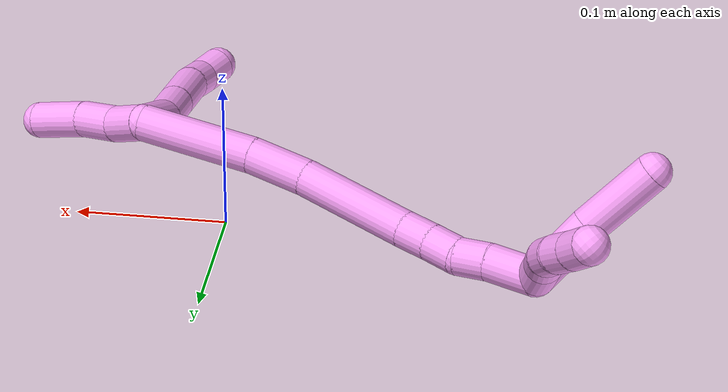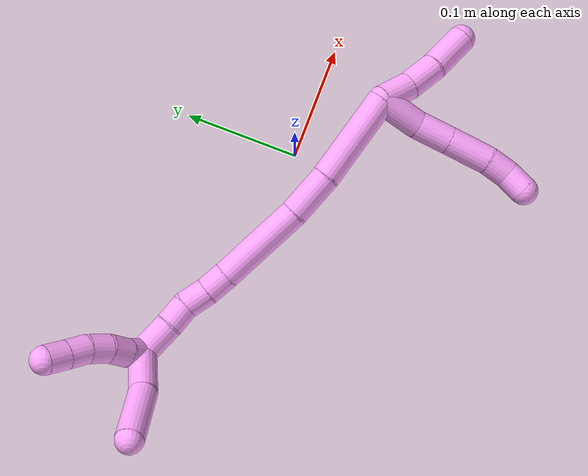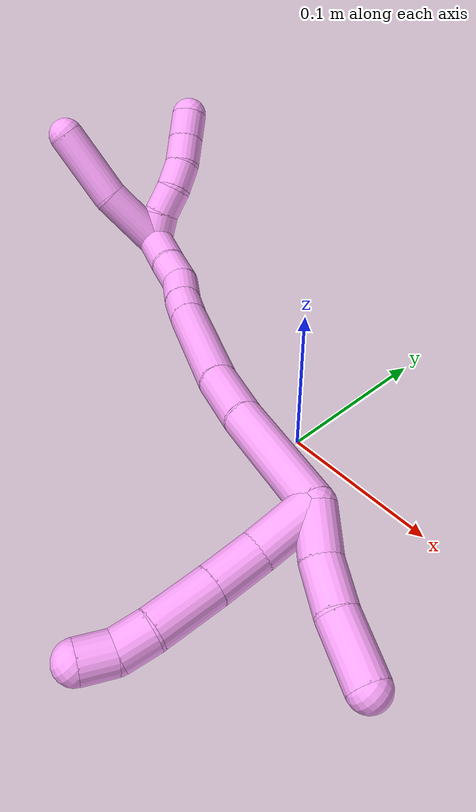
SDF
<sdf version="1.7">
 <world name="default">
  <model name="4">
   <static>0</static>
   <link name="4">
    <collision name="collision-cylinder-e_1_2_8">
     <pose>-0.007782 -0.017626 0.002929 1.4061 -0.410736 -0.349482</pose>
     <geometry><cylinder><radius>0.0125</radius><length>0.038977</length></cylinder></geometry>
     <surface>
      <friction><ode><mu>1.16</mu><mu2>1.16</mu2><slip1>0</slip1><slip2>0</slip2></ode></friction>
      <contact><ode><kp>1e+06</kp><kd>1</kd><max_vel>0</max_vel><min_depth>0.001</min_depth></ode></contact>
     </surface>
    </collision>
    <visual name="visual-cylinder-e_1_2_8">
     <pose>-0.007782 -0.017626 0.002929 1.4061 -0.410736 -0.349482</pose>
     <geometry><cylinder><radius>0.0125</radius><length>0.038977</length></cylinder></geometry>
     <material><ambient>1 0.65098 0.996078 1</ambient></material>
    </visual>
    <collision name="collision-cylinder-e_2_8_9">
     <pose>-0.018221 -0.04992 0.009893 1.30241 -0.172968 -0.131958</pose>
     <geometry><cylinder><radius>0.0125</radius><length>0.030886</length></cylinder></geometry>
     <surface>
      <friction><ode><mu>1.16</mu><mu2>1.16</mu2><slip1>0</slip1><slip2>0</slip2></ode></friction>
      <contact><ode><kp>1e+06</kp><kd>1</kd><max_vel>0</max_vel><min_depth>0.001</min_depth></ode></contact>
     </surface>
    </collision>
    <visual name="visual-cylinder-e_2_8_9">
     <pose>-0.018221 -0.04992 0.009893 1.30241 -0.172968 -0.131958</pose>
     <geometry><cylinder><radius>0.0125</radius><length>0.030886</length></cylinder></geometry>
     <material><ambient>1 0.65098 0.996078 1</ambient></material>
    </visual>
    <collision name="collision-cylinder-e_3_9_10">
     <pose>-0.024102 -0.082708 0.019457 1.27458 -0.168542 -0.124912</pose>
     <geometry><cylinder><radius>0.0125</radius><length>0.038435</length></cylinder></geometry>
     <surface>
      <friction><ode><mu>1.16</mu><mu2>1.16</mu2><slip1>0</slip1><slip2>0</slip2></ode></friction>
      <contact><ode><kp>1e+06</kp><kd>1</kd><max_vel>0</max_vel><min_depth>0.001</min_depth></ode></contact>
     </surface>
    </collision>
    <visual name="visual-cylinder-e_3_9_10">
     <pose>-0.024102 -0.082708 0.019457 1.27458 -0.168542 -0.124912</pose>
     <geometry><cylinder><radius>0.0125</radius><length>0.038435</length></cylinder></geometry>
     <material><ambient>1 0.65098 0.996078 1</ambient></material>
    </visual>
    <collision name="collision-cylinder-e_4_10_11">
     <pose>-0.030626 -0.11024 0.028287 1.23363 -0.319521 -0.227536</pose>
     <geometry><cylinder><radius>0.0125</radius><length>0.021012</length></cylinder></geometry>
     <surface>
      <friction><ode><mu>1.16</mu><mu2>1.16</mu2><slip1>0</slip1><slip2>0</slip2></ode></friction>
      <contact><ode><kp>1e+06</kp><kd>1</kd><max_vel>0</max_vel><min_depth>0.001</min_depth></ode></contact>
     </surface>
    </collision>
    <visual name="visual-cylinder-e_4_10_11">
     <pose>-0.030626 -0.11024 0.028287 1.23363 -0.319521 -0.227536</pose>
     <geometry><cylinder><radius>0.0125</radius><length>0.021012</length></cylinder></geometry>
     <material><ambient>1 0.65098 0.996078 1</ambient></material>
    </visual>
    <collision name="collision-cylinder-e_5_11_6">
     <pose>-0.036739 -0.127439 0.03779 0.898041 -0.275348 -0.133323</pose>
     <geometry><cylinder><radius>0.0125</radius><length>0.02069</length></cylinder></geometry>
     <surface>
      <friction><ode><mu>1.16</mu><mu2>1.16</mu2><slip1>0</slip1><slip2>0</slip2></ode></friction>
      <contact><ode><kp>1e+06</kp><kd>1</kd><max_vel>0</max_vel><min_depth>0.001</min_depth></ode></contact>
     </surface>
    </collision>
    <visual name="visual-cylinder-e_5_11_6">
     <pose>-0.036739 -0.127439 0.03779 0.898041 -0.275348 -0.133323</pose>
     <geometry><cylinder><radius>0.0125</radius><length>0.02069</length></cylinder></geometry>
     <material><ambient>1 0.65098 0.996078 1</ambient></material>
    </visual>
    <collision name="collision-cylinder-e_1_2_12">
     <pose>0.00298 -0.011873 -0.008974 2.21803 0.197622 0.393247</pose>
     <geometry><cylinder><radius>0.0125</radius><length>0.030356</length></cylinder></geometry>
     <surface>
      <friction><ode><mu>1.16</mu><mu2>1.16</mu2><slip1>0</slip1><slip2>0</slip2></ode></friction>
      <contact><ode><kp>1e+06</kp><kd>1</kd><max_vel>0</max_vel><min_depth>0.001</min_depth></ode></contact>
     </surface>
    </collision>
    <visual name="visual-cylinder-e_1_2_12">
     <pose>0.00298 -0.011873 -0.008974 2.21803 0.197622 0.393247</pose>
     <geometry><cylinder><radius>0.0125</radius><length>0.030356</length></cylinder></geometry>
     <material><ambient>1 0.65098 0.996078 1</ambient></material>
    </visual>
    <collision name="collision-cylinder-e_2_12_13">
     <pose>0.012364 -0.034381 -0.026509 2.24853 0.438618 0.871403</pose>
     <geometry><cylinder><radius>0.0125</radius><length>0.030161</length></cylinder></geometry>
     <surface>
      <friction><ode><mu>1.16</mu><mu2>1.16</mu2><slip1>0</slip1><slip2>0</slip2></ode></friction>
      <contact><ode><kp>1e+06</kp><kd>1</kd><max_vel>0</max_vel><min_depth>0.001</min_depth></ode></contact>
     </surface>
    </collision>
    <visual name="visual-cylinder-e_2_12_13">
     <pose>0.012364 -0.034381 -0.026509 2.24853 0.438618 0.871403</pose>
     <geometry><cylinder><radius>0.0125</radius><length>0.030161</length></cylinder></geometry>
     <material><ambient>1 0.65098 0.996078 1</ambient></material>
    </visual>
    <collision name="collision-cylinder-e_3_13_5">
     <pose>0.026585 -0.056979 -0.04869 2.4209 0.407069 1.00223</pose>
     <geometry><cylinder><radius>0.0125</radius><length>0.039483</length></cylinder></geometry>
     <surface>
      <friction><ode><mu>1.16</mu><mu2>1.16</mu2><slip1>0</slip1><slip2>0</slip2></ode></friction>
      <contact><ode><kp>1e+06</kp><kd>1</kd><max_vel>0</max_vel><min_depth>0.001</min_depth></ode></contact>
     </surface>
    </collision>
    <visual name="visual-cylinder-e_3_13_5">
     <pose>0.026585 -0.056979 -0.04869 2.4209 0.407069 1.00223</pose>
     <geometry><cylinder><radius>0.0125</radius><length>0.039483</length></cylinder></geometry>
     <material><ambient>1 0.65098 0.996078 1</ambient></material>
    </visual>
    <collision name="collision-cylinder-e_1_2_14">
     <pose>-0.028983 0.018718 0.021398 -0.718697 -0.795038 0.31288</pose>
     <geometry><cylinder><radius>0.0125</radius><length>0.081196</length></cylinder></geometry>
     <surface>
      <friction><ode><mu>1.16</mu><mu2>1.16</mu2><slip1>0</slip1><slip2>0</slip2></ode></friction>
      <contact><ode><kp>1e+06</kp><kd>1</kd><max_vel>0</max_vel><min_depth>0.001</min_depth></ode></contact>
     </surface>
    </collision>
    <visual name="visual-cylinder-e_1_2_14">
     <pose>-0.028983 0.018718 0.021398 -0.718697 -0.795038 0.31288</pose>
     <geometry><cylinder><radius>0.0125</radius><length>0.081196</length></cylinder></geometry>
     <material><ambient>1 0.65098 0.996078 1</ambient></material>
    </visual>
    <collision name="collision-cylinder-e_2_14_15">
     <pose>-0.072889 0.048282 0.051839 -0.875777 -0.813005 0.397775</pose>
     <geometry><cylinder><radius>0.0125</radius><length>0.041092</length></cylinder></geometry>
     <surface>
      <friction><ode><mu>1.16</mu><mu2>1.16</mu2><slip1>0</slip1><slip2>0</slip2></ode></friction>
      <contact><ode><kp>1e+06</kp><kd>1</kd><max_vel>0</max_vel><min_depth>0.001</min_depth></ode></contact>
     </surface>
    </collision>
    <visual name="visual-cylinder-e_2_14_15">
     <pose>-0.072889 0.048282 0.051839 -0.875777 -0.813005 0.397775</pose>
     <geometry><cylinder><radius>0.0125</radius><length>0.041092</length></cylinder></geometry>
     <material><ambient>1 0.65098 0.996078 1</ambient></material>
    </visual>
    <collision name="collision-cylinder-e_3_15_16">
     <pose>-0.115645 0.083235 0.075459 -1.02696 -0.779337 0.455158</pose>
     <geometry><cylinder><radius>0.0125</radius><length>0.079203</length></cylinder></geometry>
     <surface>
      <friction><ode><mu>1.16</mu><mu2>1.16</mu2><slip1>0</slip1><slip2>0</slip2></ode></friction>
      <contact><ode><kp>1e+06</kp><kd>1</kd><max_vel>0</max_vel><min_depth>0.001</min_depth></ode></contact>
     </surface>
    </collision>
    <visual name="visual-cylinder-e_3_15_16">
     <pose>-0.115645 0.083235 0.075459 -1.02696 -0.779337 0.455158</pose>
     <geometry><cylinder><radius>0.0125</radius><length>0.079203</length></cylinder></geometry>
     <material><ambient>1 0.65098 0.996078 1</ambient></material>
    </visual>
    <collision name="collision-cylinder-e_4_16_17">
     <pose>-0.150564 0.114434 0.094296 -1.02985 -0.708327 0.412497</pose>
     <geometry><cylinder><radius>0.0125</radius><length>0.021786</length></cylinder></geometry>
     <surface>
      <friction><ode><mu>1.16</mu><mu2>1.16</mu2><slip1>0</slip1><slip2>0</slip2></ode></friction>
      <contact><ode><kp>1e+06</kp><kd>1</kd><max_vel>0</max_vel><min_depth>0.001</min_depth></ode></contact>
     </surface>
    </collision>
    <visual name="visual-cylinder-e_4_16_17">
     <pose>-0.150564 0.114434 0.094296 -1.02985 -0.708327 0.412497</pose>
     <geometry><cylinder><radius>0.0125</radius><length>0.021786</length></cylinder></geometry>
     <material><ambient>1 0.65098 0.996078 1</ambient></material>
    </visual>
    <collision name="collision-cylinder-e_5_17_18">
     <pose>-0.16399 0.129791 0.102572 -1.11843 -0.603892 0.385041</pose>
     <geometry><cylinder><radius>0.0125</radius><length>0.022329</length></cylinder></geometry>
     <surface>
      <friction><ode><mu>1.16</mu><mu2>1.16</mu2><slip1>0</slip1><slip2>0</slip2></ode></friction>
      <contact><ode><kp>1e+06</kp><kd>1</kd><max_vel>0</max_vel><min_depth>0.001</min_depth></ode></contact>
     </surface>
    </collision>
    <visual name="visual-cylinder-e_5_17_18">
     <pose>-0.16399 0.129791 0.102572 -1.11843 -0.603892 0.385041</pose>
     <geometry><cylinder><radius>0.0125</radius><length>0.022329</length></cylinder></geometry>
     <material><ambient>1 0.65098 0.996078 1</ambient></material>
    </visual>
    <collision name="collision-cylinder-e_6_18_19">
     <pose>-0.176615 0.143846 0.113109 -0.726128 -0.624555 0.244079</pose>
     <geometry><cylinder><radius>0.0125</radius><length>0.021496</length></cylinder></geometry>
     <surface>
      <friction><ode><mu>1.16</mu><mu2>1.16</mu2><slip1>0</slip1><slip2>0</slip2></ode></friction>
      <contact><ode><kp>1e+06</kp><kd>1</kd><max_vel>0</max_vel><min_depth>0.001</min_depth></ode></contact>
     </surface>
    </collision>
    <visual name="visual-cylinder-e_6_18_19">
     <pose>-0.176615 0.143846 0.113109 -0.726128 -0.624555 0.244079</pose>
     <geometry><cylinder><radius>0.0125</radius><length>0.021496</length></cylinder></geometry>
     <material><ambient>1 0.65098 0.996078 1</ambient></material>
    </visual>
    <collision name="collision-cylinder-e_7_19_1">
     <pose>-0.193505 0.159147 0.127852 -0.857881 -0.700677 0.331174</pose>
     <geometry><cylinder><radius>0.0125</radius><length>0.032897</length></cylinder></geometry>
     <surface>
      <friction><ode><mu>1.16</mu><mu2>1.16</mu2><slip1>0</slip1><slip2>0</slip2></ode></friction>
      <contact><ode><kp>1e+06</kp><kd>1</kd><max_vel>0</max_vel><min_depth>0.001</min_depth></ode></contact>
     </surface>
    </collision>
    <visual name="visual-cylinder-e_7_19_1">
     <pose>-0.193505 0.159147 0.127852 -0.857881 -0.700677 0.331174</pose>
     <geometry><cylinder><radius>0.0125</radius><length>0.032897</length></cylinder></geometry>
     <material><ambient>1 0.65098 0.996078 1</ambient></material>
    </visual>
    <collision name="collision-cylinder-e_1_1_20">
     <pose>-0.199644 0.175871 0.14137 -0.937636 0.462891 -0.237599</pose>
     <geometry><cylinder><radius>0.0125</radius><length>0.02</length></cylinder></geometry>
     <surface>
      <friction><ode><mu>1.16</mu><mu2>1.16</mu2><slip1>0</slip1><slip2>0</slip2></ode></friction>
      <contact><ode><kp>1e+06</kp><kd>1</kd><max_vel>0</max_vel><min_depth>0.001</min_depth></ode></contact>
     </surface>
    </collision>
    <visual name="visual-cylinder-e_1_1_20">
     <pose>-0.199644 0.175871 0.14137 -0.937636 0.462891 -0.237599</pose>
     <geometry><cylinder><radius>0.0125</radius><length>0.02</length></cylinder></geometry>
     <material><ambient>1 0.65098 0.996078 1</ambient></material>
    </visual>
    <collision name="collision-cylinder-e_2_20_21">
     <pose>-0.190583 0.19139 0.149811 -1.20864 0.477555 -0.333052</pose>
     <geometry><cylinder><radius>0.0125</radius><length>0.02</length></cylinder></geometry>
     <surface>
      <friction><ode><mu>1.16</mu><mu2>1.16</mu2><slip1>0</slip1><slip2>0</slip2></ode></friction>
      <contact><ode><kp>1e+06</kp><kd>1</kd><max_vel>0</max_vel><min_depth>0.001</min_depth></ode></contact>
     </surface>
    </collision>
    <visual name="visual-cylinder-e_2_20_21">
     <pose>-0.190583 0.19139 0.149811 -1.20864 0.477555 -0.333052</pose>
     <geometry><cylinder><radius>0.0125</radius><length>0.02</length></cylinder></geometry>
     <material><ambient>1 0.65098 0.996078 1</ambient></material>
    </visual>
    <collision name="collision-cylinder-e_3_21_22">
     <pose>-0.183733 0.208634 0.156833 -1.16172 0.227369 -0.149611</pose>
     <geometry><cylinder><radius>0.0125</radius><length>0.02</length></cylinder></geometry>
     <surface>
      <friction><ode><mu>1.16</mu><mu2>1.16</mu2><slip1>0</slip1><slip2>0</slip2></ode></friction>
      <contact><ode><kp>1e+06</kp><kd>1</kd><max_vel>0</max_vel><min_depth>0.001</min_depth></ode></contact>
     </surface>
    </collision>
    <visual name="visual-cylinder-e_3_21_22">
     <pose>-0.183733 0.208634 0.156833 -1.16172 0.227369 -0.149611</pose>
     <geometry><cylinder><radius>0.0125</radius><length>0.02</length></cylinder></geometry>
     <material><ambient>1 0.65098 0.996078 1</ambient></material>
    </visual>
    <collision name="collision-cylinder-e_4_22_23">
     <pose>-0.180839 0.226054 0.165967 -1.01575 0.063966 -0.03561</pose>
     <geometry><cylinder><radius>0.0125</radius><length>0.02</length></cylinder></geometry>
     <surface>
      <friction><ode><mu>1.16</mu><mu2>1.16</mu2><slip1>0</slip1><slip2>0</slip2></ode></friction>
      <contact><ode><kp>1e+06</kp><kd>1</kd><max_vel>0</max_vel><min_depth>0.001</min_depth></ode></contact>
     </surface>
    </collision>
    <visual name="visual-cylinder-e_4_22_23">
     <pose>-0.180839 0.226054 0.165967 -1.01575 0.063966 -0.03561</pose>
     <geometry><cylinder><radius>0.0125</radius><length>0.02</length></cylinder></geometry>
     <material><ambient>1 0.65098 0.996078 1</ambient></material>
    </visual>
    <collision name="collision-cylinder-e_5_23_4">
     <pose>-0.179074 0.242892 0.176602 -0.999155 0.11284 -0.061629</pose>
     <geometry><cylinder><radius>0.0125</radius><length>0.02</length></cylinder></geometry>
     <surface>
      <friction><ode><mu>1.16</mu><mu2>1.16</mu2><slip1>0</slip1><slip2>0</slip2></ode></friction>
      <contact><ode><kp>1e+06</kp><kd>1</kd><max_vel>0</max_vel><min_depth>0.001</min_depth></ode></contact>
     </surface>
    </collision>
    <visual name="visual-cylinder-e_5_23_4">
     <pose>-0.179074 0.242892 0.176602 -0.999155 0.11284 -0.061629</pose>
     <geometry><cylinder><radius>0.0125</radius><length>0.02</length></cylinder></geometry>
     <material><ambient>1 0.65098 0.996078 1</ambient></material>
    </visual>
    <collision name="collision-cylinder-e_1_1_24">
     <pose>-0.20317 0.167805 0.159135 0.036969 0.040714 0.000753</pose>
     <geometry><cylinder><radius>0.0125</radius><length>0.046188</length></cylinder></geometry>
     <surface>
      <friction><ode><mu>1.16</mu><mu2>1.16</mu2><slip1>0</slip1><slip2>0</slip2></ode></friction>
      <contact><ode><kp>1e+06</kp><kd>1</kd><max_vel>0</max_vel><min_depth>0.001</min_depth></ode></contact>
     </surface>
    </collision>
    <visual name="visual-cylinder-e_1_1_24">
     <pose>-0.20317 0.167805 0.159135 0.036969 0.040714 0.000753</pose>
     <geometry><cylinder><radius>0.0125</radius><length>0.046188</length></cylinder></geometry>
     <material><ambient>1 0.65098 0.996078 1</ambient></material>
    </visual>
    <collision name="collision-cylinder-e_2_24_3">
     <pose>-0.201218 0.171639 0.208669 -0.17521 0.037606 -0.003303</pose>
     <geometry><cylinder><radius>0.0125</radius><length>0.053812</length></cylinder></geometry>
     <surface>
      <friction><ode><mu>1.16</mu><mu2>1.16</mu2><slip1>0</slip1><slip2>0</slip2></ode></friction>
      <contact><ode><kp>1e+06</kp><kd>1</kd><max_vel>0</max_vel><min_depth>0.001</min_depth></ode></contact>
     </surface>
    </collision>
    <visual name="visual-cylinder-e_2_24_3">
     <pose>-0.201218 0.171639 0.208669 -0.17521 0.037606 -0.003303</pose>
     <geometry><cylinder><radius>0.0125</radius><length>0.053812</length></cylinder></geometry>
     <material><ambient>1 0.65098 0.996078 1</ambient></material>
    </visual>
    <collision name="collision-sphere-3">
     <pose>-0.200207 0.176326 0.235145 0 -0 0</pose>
     <geometry><sphere><radius>0.0125</radius></sphere></geometry>
     <surface>
      <friction><ode><mu>1.16</mu><mu2>1.16</mu2><slip1>0</slip1><slip2>0</slip2></ode></friction>
      <contact><ode><kp>1e+06</kp><kd>1</kd><max_vel>0</max_vel><min_depth>0.001</min_depth></ode></contact>
     </surface>
    </collision>
    <visual name="visual-sphere-3">
     <pose>-0.200207 0.176326 0.235145 0 -0 0</pose>
     <geometry><sphere><radius>0.0125</radius></sphere></geometry>
     <material><ambient>1 0.65098 0.996078 1</ambient></material>
    </visual>
    <collision name="collision-sphere-24">
     <pose>-0.20223 0.166952 0.182194 0 -0 0</pose>
     <geometry><sphere><radius>0.0125</radius></sphere></geometry>
     <surface>
      <friction><ode><mu>1.16</mu><mu2>1.16</mu2><slip1>0</slip1><slip2>0</slip2></ode></friction>
      <contact><ode><kp>1e+06</kp><kd>1</kd><max_vel>0</max_vel><min_depth>0.001</min_depth></ode></contact>
     </surface>
    </collision>
    <visual name="visual-sphere-24">
     <pose>-0.20223 0.166952 0.182194 0 -0 0</pose>
     <geometry><sphere><radius>0.0125</radius></sphere></geometry>
     <material><ambient>1 0.65098 0.996078 1</ambient></material>
    </visual>
    <collision name="collision-sphere-4">
     <pose>-0.177948 0.251248 0.181977 0 -0 0</pose>
     <geometry><sphere><radius>0.0125</radius></sphere></geometry>
     <surface>
      <friction><ode><mu>1.16</mu><mu2>1.16</mu2><slip1>0</slip1><slip2>0</slip2></ode></friction>
      <contact><ode><kp>1e+06</kp><kd>1</kd><max_vel>0</max_vel><min_depth>0.001</min_depth></ode></contact>
     </surface>
    </collision>
    <visual name="visual-sphere-4">
     <pose>-0.177948 0.251248 0.181977 0 -0 0</pose>
     <geometry><sphere><radius>0.0125</radius></sphere></geometry>
     <material><ambient>1 0.65098 0.996078 1</ambient></material>
    </visual>
    <collision name="collision-sphere-23">
     <pose>-0.1802 0.234535 0.171226 0 -0 0</pose>
     <geometry><sphere><radius>0.0125</radius></sphere></geometry>
     <surface>
      <friction><ode><mu>1.16</mu><mu2>1.16</mu2><slip1>0</slip1><slip2>0</slip2></ode></friction>
      <contact><ode><kp>1e+06</kp><kd>1</kd><max_vel>0</max_vel><min_depth>0.001</min_depth></ode></contact>
     </surface>
    </collision>
    <visual name="visual-sphere-23">
     <pose>-0.1802 0.234535 0.171226 0 -0 0</pose>
     <geometry><sphere><radius>0.0125</radius></sphere></geometry>
     <material><ambient>1 0.65098 0.996078 1</ambient></material>
    </visual>
    <collision name="collision-sphere-22">
     <pose>-0.181478 0.217572 0.160708 0 -0 0</pose>
     <geometry><sphere><radius>0.0125</radius></sphere></geometry>
     <surface>
      <friction><ode><mu>1.16</mu><mu2>1.16</mu2><slip1>0</slip1><slip2>0</slip2></ode></friction>
      <contact><ode><kp>1e+06</kp><kd>1</kd><max_vel>0</max_vel><min_depth>0.001</min_depth></ode></contact>
     </surface>
    </collision>
    <visual name="visual-sphere-22">
     <pose>-0.181478 0.217572 0.160708 0 -0 0</pose>
     <geometry><sphere><radius>0.0125</radius></sphere></geometry>
     <material><ambient>1 0.65098 0.996078 1</ambient></material>
    </visual>
    <collision name="collision-sphere-21">
     <pose>-0.185987 0.199695 0.152957 0 -0 0</pose>
     <geometry><sphere><radius>0.0125</radius></sphere></geometry>
     <surface>
      <friction><ode><mu>1.16</mu><mu2>1.16</mu2><slip1>0</slip1><slip2>0</slip2></ode></friction>
      <contact><ode><kp>1e+06</kp><kd>1</kd><max_vel>0</max_vel><min_depth>0.001</min_depth></ode></contact>
     </surface>
    </collision>
    <visual name="visual-sphere-21">
     <pose>-0.185987 0.199695 0.152957 0 -0 0</pose>
     <geometry><sphere><radius>0.0125</radius></sphere></geometry>
     <material><ambient>1 0.65098 0.996078 1</ambient></material>
    </visual>
    <collision name="collision-sphere-20">
     <pose>-0.195179 0.183085 0.146664 0 -0 0</pose>
     <geometry><sphere><radius>0.0125</radius></sphere></geometry>
     <surface>
      <friction><ode><mu>1.16</mu><mu2>1.16</mu2><slip1>0</slip1><slip2>0</slip2></ode></friction>
      <contact><ode><kp>1e+06</kp><kd>1</kd><max_vel>0</max_vel><min_depth>0.001</min_depth></ode></contact>
     </surface>
    </collision>
    <visual name="visual-sphere-20">
     <pose>-0.195179 0.183085 0.146664 0 -0 0</pose>
     <geometry><sphere><radius>0.0125</radius></sphere></geometry>
     <material><ambient>1 0.65098 0.996078 1</ambient></material>
    </visual>
    <collision name="collision-sphere-6">
     <pose>-0.039551 -0.135225 0.043994 0 -0 0</pose>
     <geometry><sphere><radius>0.0125</radius></sphere></geometry>
     <surface>
      <friction><ode><mu>1.16</mu><mu2>1.16</mu2><slip1>0</slip1><slip2>0</slip2></ode></friction>
      <contact><ode><kp>1e+06</kp><kd>1</kd><max_vel>0</max_vel><min_depth>0.001</min_depth></ode></contact>
     </surface>
    </collision>
    <visual name="visual-sphere-6">
     <pose>-0.039551 -0.135225 0.043994 0 -0 0</pose>
     <geometry><sphere><radius>0.0125</radius></sphere></geometry>
     <material><ambient>1 0.65098 0.996078 1</ambient></material>
    </visual>
    <collision name="collision-sphere-11">
     <pose>-0.033926 -0.119653 0.031586 0 -0 0</pose>
     <geometry><sphere><radius>0.0125</radius></sphere></geometry>
     <surface>
      <friction><ode><mu>1.16</mu><mu2>1.16</mu2><slip1>0</slip1><slip2>0</slip2></ode></friction>
      <contact><ode><kp>1e+06</kp><kd>1</kd><max_vel>0</max_vel><min_depth>0.001</min_depth></ode></contact>
     </surface>
    </collision>
    <visual name="visual-sphere-11">
     <pose>-0.033926 -0.119653 0.031586 0 -0 0</pose>
     <geometry><sphere><radius>0.0125</radius></sphere></geometry>
     <material><ambient>1 0.65098 0.996078 1</ambient></material>
    </visual>
    <collision name="collision-sphere-10">
     <pose>-0.027326 -0.100828 0.024987 0 -0 0</pose>
     <geometry><sphere><radius>0.0125</radius></sphere></geometry>
     <surface>
      <friction><ode><mu>1.16</mu><mu2>1.16</mu2><slip1>0</slip1><slip2>0</slip2></ode></friction>
      <contact><ode><kp>1e+06</kp><kd>1</kd><max_vel>0</max_vel><min_depth>0.001</min_depth></ode></contact>
     </surface>
    </collision>
    <visual name="visual-sphere-10">
     <pose>-0.027326 -0.100828 0.024987 0 -0 0</pose>
     <geometry><sphere><radius>0.0125</radius></sphere></geometry>
     <material><ambient>1 0.65098 0.996078 1</ambient></material>
    </visual>
    <collision name="collision-sphere-9">
     <pose>-0.020879 -0.064588 0.013927 0 -0 0</pose>
     <geometry><sphere><radius>0.0125</radius></sphere></geometry>
     <surface>
      <friction><ode><mu>1.16</mu><mu2>1.16</mu2><slip1>0</slip1><slip2>0</slip2></ode></friction>
      <contact><ode><kp>1e+06</kp><kd>1</kd><max_vel>0</max_vel><min_depth>0.001</min_depth></ode></contact>
     </surface>
    </collision>
    <visual name="visual-sphere-9">
     <pose>-0.020879 -0.064588 0.013927 0 -0 0</pose>
     <geometry><sphere><radius>0.0125</radius></sphere></geometry>
     <material><ambient>1 0.65098 0.996078 1</ambient></material>
    </visual>
    <collision name="collision-sphere-2">
     <geometry><sphere><radius>0.0125</radius></sphere></geometry>
     <surface>
      <friction><ode><mu>1.16</mu><mu2>1.16</mu2><slip1>0</slip1><slip2>0</slip2></ode></friction>
      <contact><ode><kp>1e+06</kp><kd>1</kd><max_vel>0</max_vel><min_depth>0.001</min_depth></ode></contact>
     </surface>
    </collision>
    <visual name="visual-sphere-2">
     <geometry><sphere><radius>0.0125</radius></sphere></geometry>
     <material><ambient>1 0.65098 0.996078 1</ambient></material>
    </visual>
    <collision name="collision-sphere-19">
     <pose>-0.1829 0.149636 0.119629 0 -0 0</pose>
     <geometry><sphere><radius>0.0125</radius></sphere></geometry>
     <surface>
      <friction><ode><mu>1.16</mu><mu2>1.16</mu2><slip1>0</slip1><slip2>0</slip2></ode></friction>
      <contact><ode><kp>1e+06</kp><kd>1</kd><max_vel>0</max_vel><min_depth>0.001</min_depth></ode></contact>
     </surface>
    </collision>
    <visual name="visual-sphere-19">
     <pose>-0.1829 0.149636 0.119629 0 -0 0</pose>
     <geometry><sphere><radius>0.0125</radius></sphere></geometry>
     <material><ambient>1 0.65098 0.996078 1</ambient></material>
    </visual>
    <collision name="collision-sphere-8">
     <pose>-0.015563 -0.035252 0.005859 0 -0 0</pose>
     <geometry><sphere><radius>0.0125</radius></sphere></geometry>
     <surface>
      <friction><ode><mu>1.16</mu><mu2>1.16</mu2><slip1>0</slip1><slip2>0</slip2></ode></friction>
      <contact><ode><kp>1e+06</kp><kd>1</kd><max_vel>0</max_vel><min_depth>0.001</min_depth></ode></contact>
     </surface>
    </collision>
    <visual name="visual-sphere-8">
     <pose>-0.015563 -0.035252 0.005859 0 -0 0</pose>
     <geometry><sphere><radius>0.0125</radius></sphere></geometry>
     <material><ambient>1 0.65098 0.996078 1</ambient></material>
    </visual>
    <collision name="collision-sphere-12">
     <pose>0.00596 -0.023745 -0.017948 0 -0 0</pose>
     <geometry><sphere><radius>0.0125</radius></sphere></geometry>
     <surface>
      <friction><ode><mu>1.16</mu><mu2>1.16</mu2><slip1>0</slip1><slip2>0</slip2></ode></friction>
      <contact><ode><kp>1e+06</kp><kd>1</kd><max_vel>0</max_vel><min_depth>0.001</min_depth></ode></contact>
     </surface>
    </collision>
    <visual name="visual-sphere-12">
     <pose>0.00596 -0.023745 -0.017948 0 -0 0</pose>
     <geometry><sphere><radius>0.0125</radius></sphere></geometry>
     <material><ambient>1 0.65098 0.996078 1</ambient></material>
    </visual>
    <collision name="collision-sphere-13">
     <pose>0.018769 -0.045016 -0.035069 0 -0 0</pose>
     <geometry><sphere><radius>0.0125</radius></sphere></geometry>
     <surface>
      <friction><ode><mu>1.16</mu><mu2>1.16</mu2><slip1>0</slip1><slip2>0</slip2></ode></friction>
      <contact><ode><kp>1e+06</kp><kd>1</kd><max_vel>0</max_vel><min_depth>0.001</min_depth></ode></contact>
     </surface>
    </collision>
    <visual name="visual-sphere-13">
     <pose>0.018769 -0.045016 -0.035069 0 -0 0</pose>
     <geometry><sphere><radius>0.0125</radius></sphere></geometry>
     <material><ambient>1 0.65098 0.996078 1</ambient></material>
    </visual>
    <collision name="collision-sphere-5">
     <pose>0.034401 -0.068942 -0.062311 0 -0 0</pose>
     <geometry><sphere><radius>0.0125</radius></sphere></geometry>
     <surface>
      <friction><ode><mu>1.16</mu><mu2>1.16</mu2><slip1>0</slip1><slip2>0</slip2></ode></friction>
      <contact><ode><kp>1e+06</kp><kd>1</kd><max_vel>0</max_vel><min_depth>0.001</min_depth></ode></contact>
     </surface>
    </collision>
    <visual name="visual-sphere-5">
     <pose>0.034401 -0.068942 -0.062311 0 -0 0</pose>
     <geometry><sphere><radius>0.0125</radius></sphere></geometry>
     <material><ambient>1 0.65098 0.996078 1</ambient></material>
    </visual>
    <collision name="collision-sphere-14">
     <pose>-0.057965 0.037436 0.042795 0 -0 0</pose>
     <geometry><sphere><radius>0.0125</radius></sphere></geometry>
     <surface>
      <friction><ode><mu>1.16</mu><mu2>1.16</mu2><slip1>0</slip1><slip2>0</slip2></ode></friction>
      <contact><ode><kp>1e+06</kp><kd>1</kd><max_vel>0</max_vel><min_depth>0.001</min_depth></ode></contact>
     </surface>
    </collision>
    <visual name="visual-sphere-14">
     <pose>-0.057965 0.037436 0.042795 0 -0 0</pose>
     <geometry><sphere><radius>0.0125</radius></sphere></geometry>
     <material><ambient>1 0.65098 0.996078 1</ambient></material>
    </visual>
    <collision name="collision-sphere-15">
     <pose>-0.087813 0.059128 0.060882 0 -0 0</pose>
     <geometry><sphere><radius>0.0125</radius></sphere></geometry>
     <surface>
      <friction><ode><mu>1.16</mu><mu2>1.16</mu2><slip1>0</slip1><slip2>0</slip2></ode></friction>
      <contact><ode><kp>1e+06</kp><kd>1</kd><max_vel>0</max_vel><min_depth>0.001</min_depth></ode></contact>
     </surface>
    </collision>
    <visual name="visual-sphere-15">
     <pose>-0.087813 0.059128 0.060882 0 -0 0</pose>
     <geometry><sphere><radius>0.0125</radius></sphere></geometry>
     <material><ambient>1 0.65098 0.996078 1</ambient></material>
    </visual>
    <collision name="collision-sphere-16">
     <pose>-0.143477 0.107342 0.090036 0 -0 0</pose>
     <geometry><sphere><radius>0.0125</radius></sphere></geometry>
     <surface>
      <friction><ode><mu>1.16</mu><mu2>1.16</mu2><slip1>0</slip1><slip2>0</slip2></ode></friction>
      <contact><ode><kp>1e+06</kp><kd>1</kd><max_vel>0</max_vel><min_depth>0.001</min_depth></ode></contact>
     </surface>
    </collision>
    <visual name="visual-sphere-16">
     <pose>-0.143477 0.107342 0.090036 0 -0 0</pose>
     <geometry><sphere><radius>0.0125</radius></sphere></geometry>
     <material><ambient>1 0.65098 0.996078 1</ambient></material>
    </visual>
    <collision name="collision-sphere-17">
     <pose>-0.157651 0.121526 0.098556 0 -0 0</pose>
     <geometry><sphere><radius>0.0125</radius></sphere></geometry>
     <surface>
      <friction><ode><mu>1.16</mu><mu2>1.16</mu2><slip1>0</slip1><slip2>0</slip2></ode></friction>
      <contact><ode><kp>1e+06</kp><kd>1</kd><max_vel>0</max_vel><min_depth>0.001</min_depth></ode></contact>
     </surface>
    </collision>
    <visual name="visual-sphere-17">
     <pose>-0.157651 0.121526 0.098556 0 -0 0</pose>
     <geometry><sphere><radius>0.0125</radius></sphere></geometry>
     <material><ambient>1 0.65098 0.996078 1</ambient></material>
    </visual>
    <collision name="collision-sphere-18">
     <pose>-0.17033 0.138057 0.106589 0 -0 0</pose>
     <geometry><sphere><radius>0.0125</radius></sphere></geometry>
     <surface>
      <friction><ode><mu>1.16</mu><mu2>1.16</mu2><slip1>0</slip1><slip2>0</slip2></ode></friction>
      <contact><ode><kp>1e+06</kp><kd>1</kd><max_vel>0</max_vel><min_depth>0.001</min_depth></ode></contact>
     </surface>
    </collision>
    <visual name="visual-sphere-18">
     <pose>-0.17033 0.138057 0.106589 0 -0 0</pose>
     <geometry><sphere><radius>0.0125</radius></sphere></geometry>
     <material><ambient>1 0.65098 0.996078 1</ambient></material>
    </visual>
    <collision name="collision-sphere-1">
     <pose>-0.20411 0.168658 0.136076 0 -0 0</pose>
     <geometry><sphere><radius>0.0125</radius></sphere></geometry>
     <surface>
      <friction><ode><mu>1.16</mu><mu2>1.16</mu2><slip1>0</slip1><slip2>0</slip2></ode></friction>
      <contact><ode><kp>1e+06</kp><kd>1</kd><max_vel>0</max_vel><min_depth>0.001</min_depth></ode></contact>
     </surface>
    </collision>
    <visual name="visual-sphere-1">
     <pose>-0.20411 0.168658 0.136076 0 -0 0</pose>
     <geometry><sphere><radius>0.0125</radius></sphere></geometry>
     <material><ambient>1 0.65098 0.996078 1</ambient></material>
    </visual>
    <inertial>
     <pose>-0.096246 0.063588 0.073022 0 -0 0</pose>
     <mass>0.75</mass>
     <inertia>
      <ixx>0.000149</ixx>
      <ixy>0</ixy>
      <ixz>0</ixz>
      <iyy>0.000155</iyy>
      <iyz>0</iyz>
      <izz>5.5e-05</izz>
     </inertia>
    </inertial>
   </link>
   <pose>0.064852 -0.054819 0.040452 0.304812 -0.826263 0.019936</pose>
  </model>
 </world>
</sdf>
